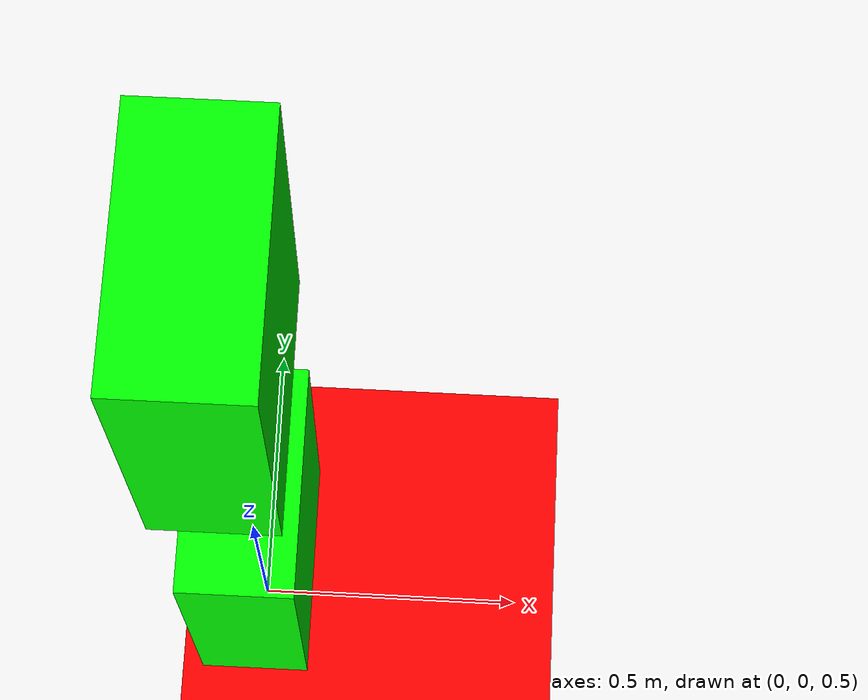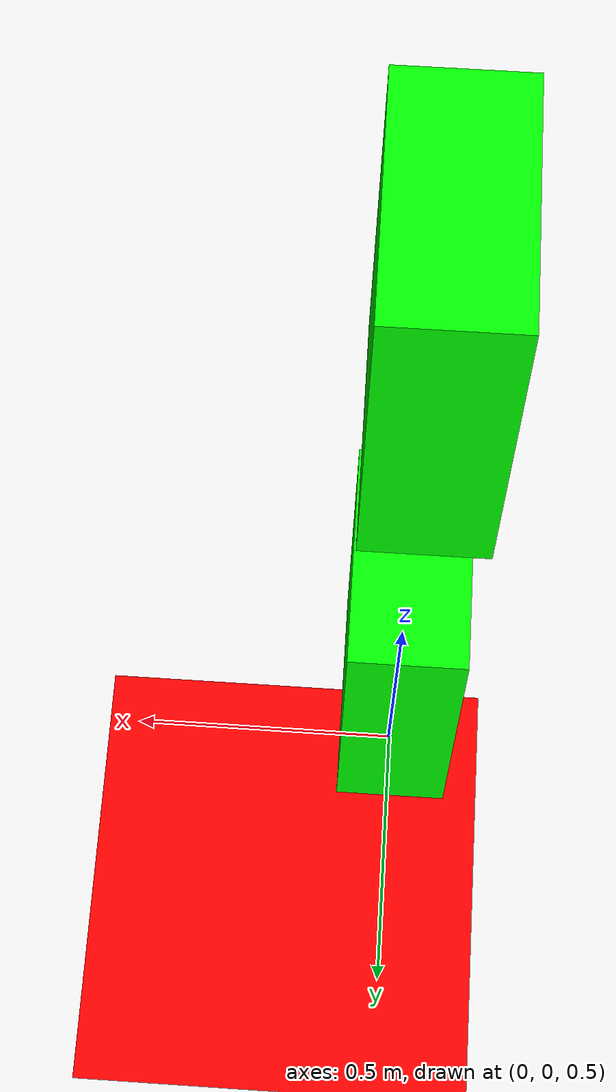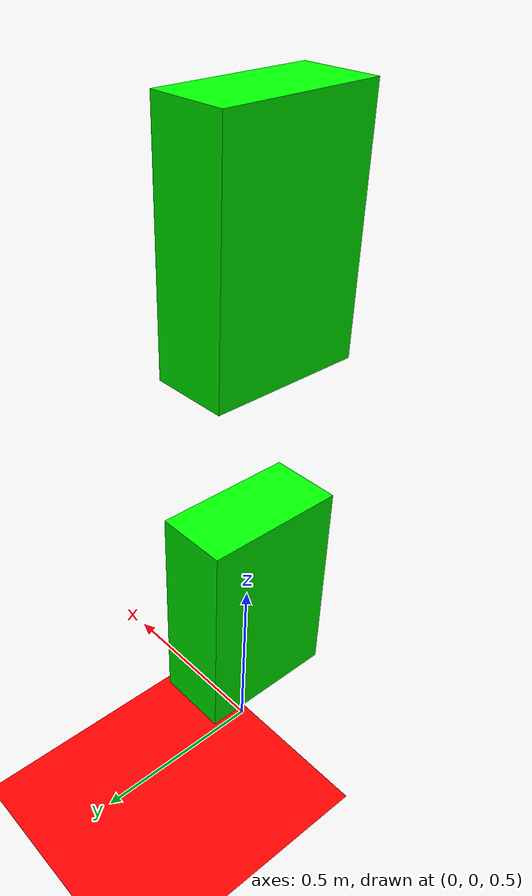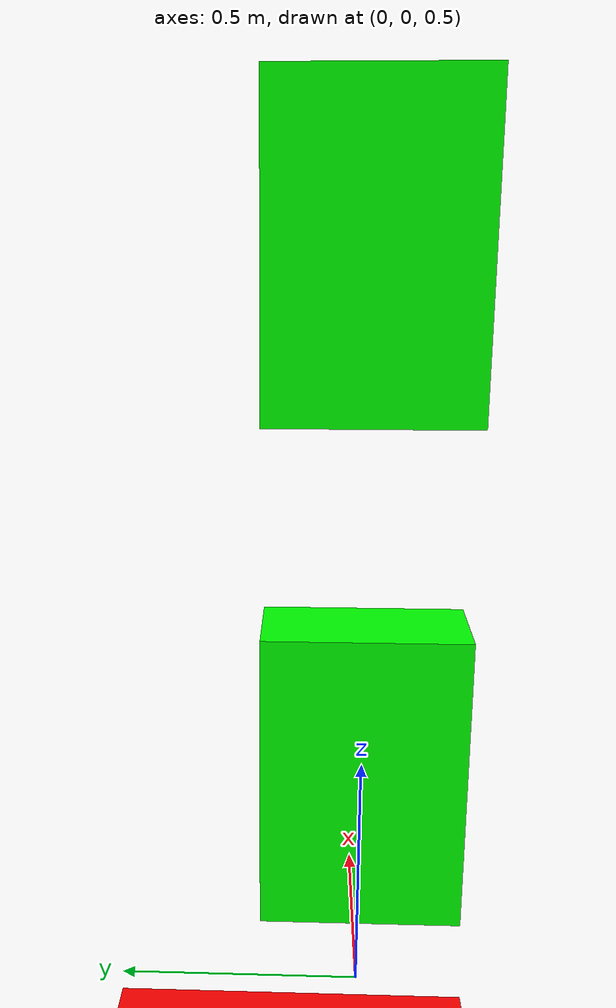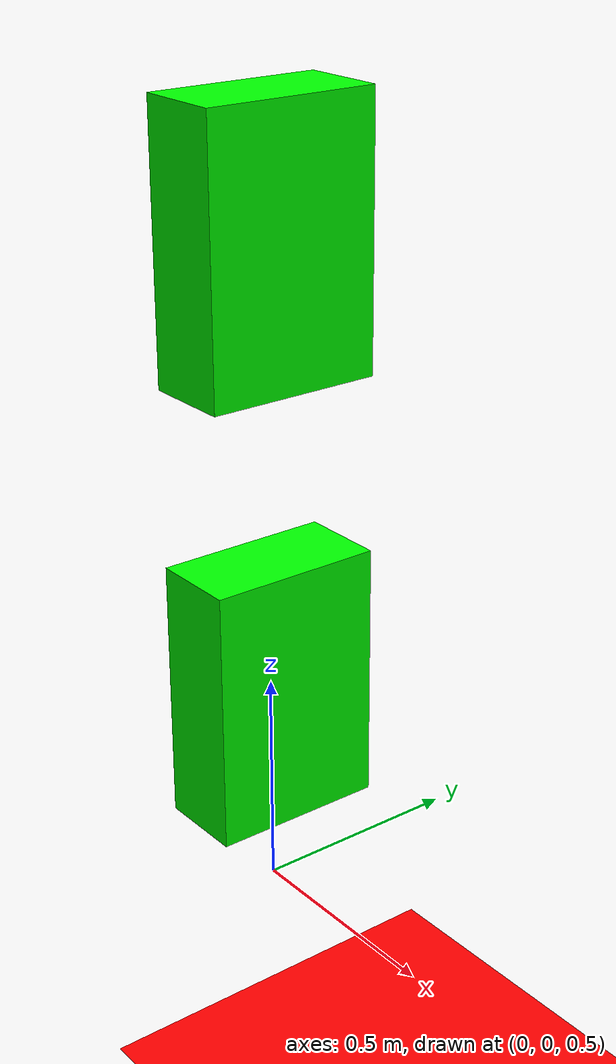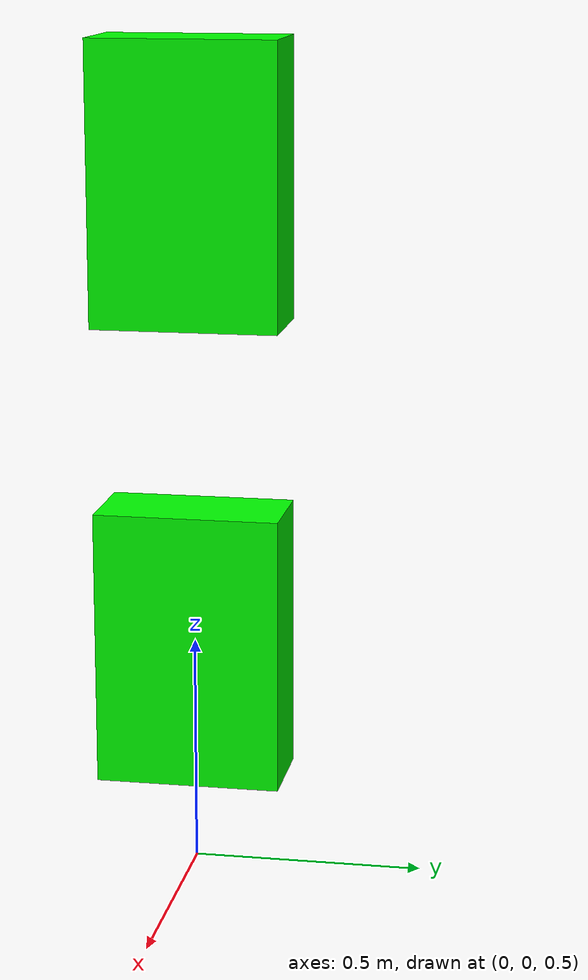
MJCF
<mujoco>
    <compiler angle="radian" />
    <visual>
        <headlight ambient="0.5 0.5 0.5" />
    </visual>

    <asset>
        <material name="green" rgba="0 1 0 1" />
    </asset>
    <option gravity="0 0 -1" />
    <worldbody>
        <light diffuse=".5 .5 .5" pos="0 0 3" dir="0 0 -1" />
        <geom type="plane" size="1 1 0.1" rgba="1 0 0 1" />
        <body pos="0 0 1" euler="0 0 0">
            <joint type="free"/>
            <inertial mass="1" pos="0 0 0" diaginertia="0.01 0.01 0.01" />
            <geom type="box" size=".1 .2 .3" material="green" />
        </body>
        <body pos="0 0 2" euler="0 0 0">
            <joint type="free"/>
            <inertial mass="1" pos="0 0 0" diaginertia="0.01 0.01 0.01" />
            <geom type="box" size=".1 .2 .3" material="green" />
        </body>
    </worldbody>
</mujoco>
